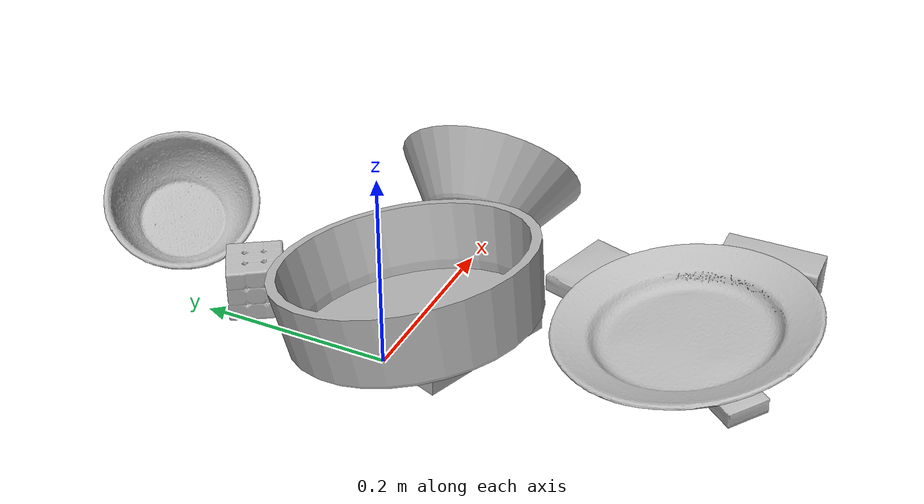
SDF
<sdf version="1.4">
  <world name="default">
    <light name="light1" type="point">
      <pose>0 0 1 0 0 0</pose>
      <diffuse>3 3 3 1</diffuse>
      <specular>3 3 3 1</specular>
    </light>
    <light name="light2" type="point">
      <pose>0 0.5 2 0 0 0</pose>
      <diffuse>1 1 1 1</diffuse>
      <specular>1 1 1 1</specular>
    </light>
    <light name="light3" type="point">
      <pose>0 0.5 2 0 0 0</pose>
      <diffuse>3 3 3 1</diffuse>
      <specular>3 3 3 1</specular>
    </light>
    <scene>
      <ambient>0.7 0.7 0.7</ambient>
    </scene>
    <model name="box1">
      <link name="link_box1">
        <collision name="default">
          <geometry>
            <mesh>
              <uri>model://gelatin_box/collision_meshes/collision.obj</uri>
              <scale>1.0 1.0 1.0</scale>
            </mesh>
          </geometry>
          <surface>
            <friction>
              <ode>
                <mu>0.5</mu>
                <mu2>0.5</mu2>
              </ode>
            </friction>
          <contact>
        <ode>
            <max_vel>0</max_vel>
            <min_depth>0.0001</min_depth>
            <kp>1e8</kp>
        </ode>
    </contact></surface>
        </collision>
        <visual name="default">
          <geometry>
            <mesh>
              <uri>model://gelatin_box/visual_meshes/visual.dae</uri>
              <scale>1.0 1.0 1.0</scale>
            </mesh>
          </geometry>
        </visual>
        <inertial>
          <mass>0.1979130208492279</mass>
          <pose>0.0004319618456065655 0.00011156871914863586 -0.0003640321083366871 -0.0010503722055948273 -0.004755818222760974 0.016440559471883928</pose>
          <inertia>
            <ixx>0.00013971045</ixx>
            <iyy>9.9794444e-05</iyy>
            <izz>0.00021267045</izz>
            <ixy>0</ixy>
            <ixz>0</ixz>
            <iyz>0</iyz>
          </inertia>
        </inertial>
      </link>
      <pose>0.1258113980293274 0.3280661702156067 0.01516830362379551 0.005594329308410058 -0.007303190093298583 -2.4081377866992186</pose>
    </model>
    <model name="box11">
      <link name="link_box11">
        <collision name="default">
          <geometry>
            <mesh>
              <uri>model://sugar_box/collision_meshes/collision.obj</uri>
              <scale>0.5 0.5 0.5</scale>
            </mesh>
          </geometry>
          <surface>
            <friction>
              <ode>
                <mu>0.5</mu>
                <mu2>0.5</mu2>
              </ode>
            </friction>
          <contact>
        <ode>
            <max_vel>0</max_vel>
            <min_depth>0.0001</min_depth>
            <kp>1e8</kp>
        </ode>
    </contact></surface>
        </collision>
        <visual name="default">
          <geometry>
            <mesh>
              <uri>model://sugar_box/visual_meshes/visual.dae</uri>
              <scale>0.5 0.5 0.5</scale>
            </mesh>
          </geometry>
        </visual>
        <inertial>
          <mass>0.10992158949375153</mass>
          <pose>0.0005171863595023751 1.924554817378521e-05 -0.00018182402709499002 -0.00040462650409139634 0.0010506636387973133 0.002615378555960767</pose>
          <inertia>
            <ixx>2.2896586e-05</ixx>
            <iyy>7.400649e-05</iyy>
            <izz>8.8594585e-05</izz>
            <ixy>0</ixy>
            <ixz>0</ixz>
            <iyz>0</iyz>
          </inertia>
        </inertial>
      </link>
      <pose>0.2132001370191574 -0.12804923951625824 0.011399314738810062 0.0007744855343533915 -0.02343212063900627 -0.30126181588227297</pose>
    </model>
    <model name="box2">
      <link name="link_box2">
        <collision name="default">
          <geometry>
            <mesh>
              <uri>model://jenga/collision_meshes/collision.obj</uri>
              <scale>1.0 1.0 1.0</scale>
            </mesh>
          </geometry>
          <surface>
            <friction>
              <ode>
                <mu>0.5</mu>
                <mu2>0.5</mu2>
              </ode>
            </friction>
          <contact>
        <ode>
            <max_vel>0</max_vel>
            <min_depth>0.0001</min_depth>
            <kp>1e8</kp>
        </ode>
    </contact></surface>
        </collision>
        <visual name="default">
          <geometry>
            <mesh>
              <uri>model://jenga/visual_meshes/visual.dae</uri>
              <scale>1.0 1.0 1.0</scale>
            </mesh>
          </geometry>
        </visual>
        <inertial>
          <mass>0.12651896476745605</mass>
          <pose>-2.502855807051674e-07 -0.00010250010382151231 -4.0923401684267446e-05 0.0 -7.34215461761844e-07 0.0</pose>
          <inertia>
            <ixx>3.5010868e-05</ixx>
            <iyy>0.00023723267</iyy>
            <izz>0.00025326604</izz>
            <ixy>0</ixy>
            <ixz>0</ixz>
            <iyz>0</iyz>
          </inertia>
        </inertial>
      </link>
      <pose>0.05344587564468384 -0.06754479557275772 0.015012363903224468 -0.0002227894626082984 -1.7930628499047056e-05 -0.34139282404907334</pose>
    </model>
    <model name="box21">
      <link name="link_box21">
        <collision name="default">
          <geometry>
            <mesh>
              <uri>model://wood_block/collision_meshes/collision.obj</uri>
              <scale>0.5 0.5 0.5</scale>
            </mesh>
          </geometry>
          <surface>
            <friction>
              <ode>
                <mu>0.5</mu>
                <mu2>0.5</mu2>
              </ode>
            </friction>
          <contact>
        <ode>
            <max_vel>0</max_vel>
            <min_depth>0.0001</min_depth>
            <kp>1e8</kp>
        </ode>
    </contact></surface>
        </collision>
        <visual name="default">
          <geometry>
            <mesh>
              <uri>model://wood_block/visual_meshes/visual.dae</uri>
              <scale>0.5 0.5 0.5</scale>
            </mesh>
          </geometry>
        </visual>
        <inertial>
          <mass>0.17952100932598114</mass>
          <pose>-2.906657982748584e-06 -0.00028540476341731846 0.00013204291462898254 -0.052208472466385096 -0.005192695659959234 -0.0068613786899108485</pose>
          <inertia>
            <ixx>6.0056565e-05</ixx>
            <iyy>0.0001897187</iyy>
            <izz>0.00018900905</izz>
            <ixy>0</ixy>
            <ixz>0</ixz>
            <iyz>0</iyz>
          </inertia>
        </inertial>
      </link>
      <pose>0.27824994921684265 -0.30107030272483826 0.022629259154200554 -0.005213532428300558 0.005719237868844372 -1.5636180362547216</pose>
    </model>
    <model name="box3">
      <link name="link_box3">
        <collision name="default">
          <geometry>
            <mesh>
              <uri>model://rubiks_cube/collision_meshes/collision.obj</uri>
              <scale>1.0 1.0 1.0</scale>
            </mesh>
          </geometry>
          <surface>
            <friction>
              <ode>
                <mu>0.5</mu>
                <mu2>0.5</mu2>
              </ode>
            </friction>
          <contact>
        <ode>
            <max_vel>0</max_vel>
            <min_depth>0.0001</min_depth>
            <kp>1e8</kp>
        </ode>
    </contact></surface>
        </collision>
        <visual name="default">
          <geometry>
            <mesh>
              <uri>model://rubiks_cube/visual_meshes/visual.dae</uri>
              <scale>1.0 1.0 1.0</scale>
            </mesh>
          </geometry>
        </visual>
        <inertial>
          <mass>0.2539031207561493</mass>
          <pose>2.6721041649580002e-05 5.2569666877388954e-05 -7.264316082000732e-06 -0.05467208428881645 -0.09814040742269707 -0.034455380154792534</pose>
          <inertia>
            <ixx>0.00014029852</ixx>
            <iyy>0.00013964424</iyy>
            <izz>0.00014146113</izz>
            <ixy>0</ixy>
            <ixz>0</ixz>
            <iyz>0</iyz>
          </inertia>
        </inertial>
      </link>
      <pose>0.029210994020104408 0.15967807173728943 0.02867903932929039 -0.0002627346667972049 -0.0002663673151577994 -0.9895415008390825</pose>
    </model>
    <model name="box31">
      <link name="link_box31">
        <collision name="default">
          <geometry>
            <mesh>
              <uri>model://pudding_box/collision_meshes/collision.obj</uri>
              <scale>0.5 0.5 0.5</scale>
            </mesh>
          </geometry>
          <surface>
            <friction>
              <ode>
                <mu>0.5</mu>
                <mu2>0.5</mu2>
              </ode>
            </friction>
          <contact>
        <ode>
            <max_vel>0</max_vel>
            <min_depth>0.0001</min_depth>
            <kp>1e8</kp>
        </ode>
    </contact></surface>
        </collision>
        <visual name="default">
          <geometry>
            <mesh>
              <uri>model://pudding_box/visual_meshes/visual.dae</uri>
              <scale>0.5 0.5 0.5</scale>
            </mesh>
          </geometry>
        </visual>
        <inertial>
          <mass>0.030597222968935966</mass>
          <pose>0.00024474109522998333 0.00040339428232982755 -0.00025944135268218815 0.005213101792545572 -0.006603798718575614 0.020079825159656634</pose>
          <inertia>
            <ixx>8.6471455e-06</ixx>
            <iyy>5.8178607e-06</iyy>
            <izz>1.2769769e-05</izz>
            <ixy>0</ixy>
            <ixz>0</ixz>
            <iyz>0</iyz>
          </inertia>
        </inertial>
      </link>
      <pose>0.08080026507377625 -0.3185552656650543 0.010374730452895164 0.006032266466643603 -0.05651471528568631 -0.6737285772100605</pose>
    </model>
    <model name="plate1">
      <link name="link_plate1">
        <collision name="default">
          <geometry>
            <mesh>
              <uri>model://pan_tefal/collision_meshes/collision.obj</uri>
              <scale>1.0 1.0 1.0</scale>
            </mesh>
          </geometry>
          <surface>
            <friction>
              <ode>
                <mu>0.5</mu>
                <mu2>0.5</mu2>
              </ode>
            </friction>
          <contact>
        <ode>
            <max_vel>0</max_vel>
            <min_depth>0.0001</min_depth>
            <kp>1e8</kp>
        </ode>
    </contact></surface>
        </collision>
        <visual name="default">
          <geometry>
            <mesh>
              <uri>model://pan_tefal/visual_meshes/visual.dae</uri>
              <scale>1.0 1.0 1.0</scale>
            </mesh>
          </geometry>
        </visual>
        <inertial>
          <mass>1.6321053504943848</mass>
          <pose>-0.00018001697026193142 3.279276279499754e-05 -0.00851493887603283 0.0008190355512640809 -0.00033013448733331557 -0.33186498661790637</pose>
          <inertia>
            <ixx>0.011266344</ixx>
            <iyy>0.011338978</iyy>
            <izz>0.02073917</izz>
            <ixy>0</ixy>
            <ixz>0</ixz>
            <iyz>0</iyz>
          </inertia>
        </inertial>
      </link>
      <pose>0.03659064322710037 -0.011364765465259552 0.063511922955513 -0.1604643829516936 0.1704207618065712 0.4842579086050451</pose>
    </model>
    <model name="bowl1">
      <link name="link_bowl1">
        <collision name="default">
          <geometry>
            <mesh>
              <uri>model://bowl/collision_meshes/collision.obj</uri>
              <scale>1.0 1.0 1.0</scale>
            </mesh>
          </geometry>
          <surface>
            <friction>
              <ode>
                <mu>0.5</mu>
                <mu2>0.5</mu2>
              </ode>
            </friction>
          <contact>
        <ode>
            <max_vel>0</max_vel>
            <min_depth>0.0001</min_depth>
            <kp>1e8</kp>
        </ode>
    </contact></surface>
        </collision>
        <visual name="default">
          <geometry>
            <mesh>
              <uri>model://bowl/visual_meshes/visual.dae</uri>
              <scale>1.0 1.0 1.0</scale>
            </mesh>
          </geometry>
        </visual>
        <inertial>
          <mass>0.08853479474782944</mass>
          <pose>0.0002044534485321492 -0.0010302085429430008 -0.0008042657864280045 -0.015764086220495594 0.014546762208611713 0.7140398935341641</pose>
          <inertia>
            <ixx>0.00020337135</ixx>
            <iyy>0.00019882726</iyy>
            <izz>0.00034214073</izz>
            <ixy>0</ixy>
            <ixz>0</ixz>
            <iyz>0</iyz>
          </inertia>
        </inertial>
      </link>
      <pose>0.08588215708732605 0.2877946197986603 0.04799935221672058 0.5323349646503909 0.3016807384800796 -1.2858704740398281</pose>
    </model>
    <model name="plate2">
      <link name="link_plate2">
        <collision name="default">
          <geometry>
            <mesh>
              <uri>model://plate/collision_meshes/collision.obj</uri>
              <scale>1.0 1.0 1.0</scale>
            </mesh>
          </geometry>
          <surface>
            <friction>
              <ode>
                <mu>0.5</mu>
                <mu2>0.5</mu2>
              </ode>
            </friction>
          <contact>
        <ode>
            <max_vel>0</max_vel>
            <min_depth>0.0001</min_depth>
            <kp>1e8</kp>
        </ode>
    </contact></surface>
        </collision>
        <visual name="default">
          <geometry>
            <mesh>
              <uri>model://plate/visual_meshes/visual.dae</uri>
              <scale>1.0 1.0 1.0</scale>
            </mesh>
          </geometry>
        </visual>
        <inertial>
          <mass>0.10531359910964966</mass>
          <pose>-0.0006044624024070799 0.00027825951110571623 -0.001056199660524726 0.0022187923451504944 -0.0032254757952566134 0.45260828030698763</pose>
          <inertia>
            <ixx>0.00049265905</ixx>
            <iyy>0.00048794702</iyy>
            <izz>0.0009635677</izz>
            <ixy>0</ixy>
            <ixz>0</ixz>
            <iyz>0</iyz>
          </inertia>
        </inertial>
      </link>
      <pose>0.13639090955257416 -0.2551124393939972 0.029992368072271347 0.11982015525135603 -0.12646779103596412 -1.9219743698151828</pose>
    </model>
    <model name="bowl2">
      <link name="link_bowl2">
        <collision name="default">
          <geometry>
            <mesh>
              <uri>model://bowl_a/collision_meshes/collision.obj</uri>
              <scale>1.0 1.0 1.0</scale>
            </mesh>
          </geometry>
          <surface>
            <friction>
              <ode>
                <mu>0.5</mu>
                <mu2>0.5</mu2>
              </ode>
            </friction>
          <contact>
        <ode>
            <max_vel>0</max_vel>
            <min_depth>0.0001</min_depth>
            <kp>1e8</kp>
        </ode>
    </contact></surface>
        </collision>
        <visual name="default">
          <geometry>
            <mesh>
              <uri>model://bowl_a/visual_meshes/visual.dae</uri>
              <scale>1.0 1.0 1.0</scale>
            </mesh>
          </geometry>
        </visual>
        <inertial>
          <mass>0.4180941581726074</mass>
          <pose>0.000278673687716946 4.731199442176148e-05 -0.0013765294570475817 -0.0009805326545729344 -0.001093820496942545 -0.19124076645491772</pose>
          <inertia>
            <ixx>0.0011903334</ixx>
            <iyy>0.0011976411</iyy>
            <izz>0.0021170534</izz>
            <ixy>0</ixy>
            <ixz>0</ixz>
            <iyz>0</iyz>
          </inertia>
        </inertial>
      </link>
      <pose>0.2267840951681137 -0.0014245507773011923 0.06398921459913254 -0.9170834055399923 -0.33848407429801936 -1.6862979174440582</pose>
    </model>
  <physics type="ode">
      <max_contacts>50</max_contacts>
      <ode>
        <solver>
          <type>quick</type>
          <iters>75</iters>
        </solver>
        <constraints>
          <contact_max_correcting_vel>0</contact_max_correcting_vel>
          <contact_surface_layer>0</contact_surface_layer>
        </constraints>
      </ode>
    </physics></world>
</sdf>
